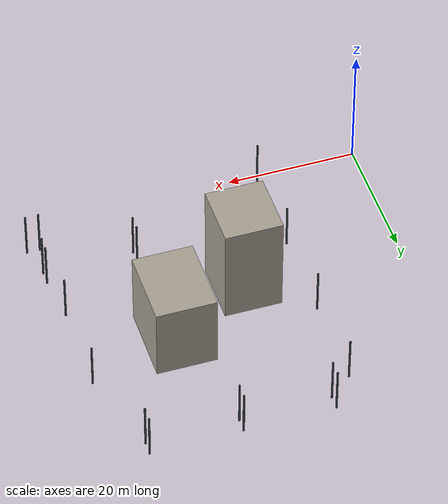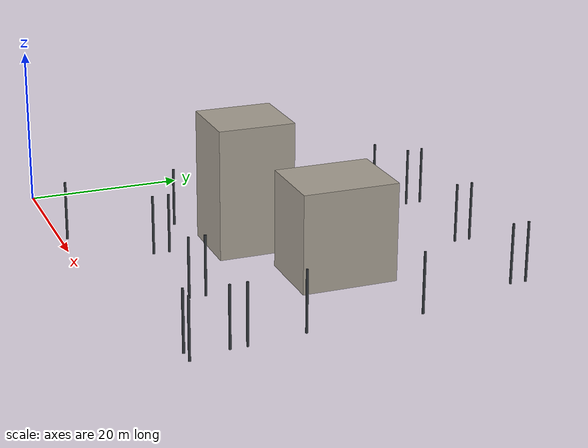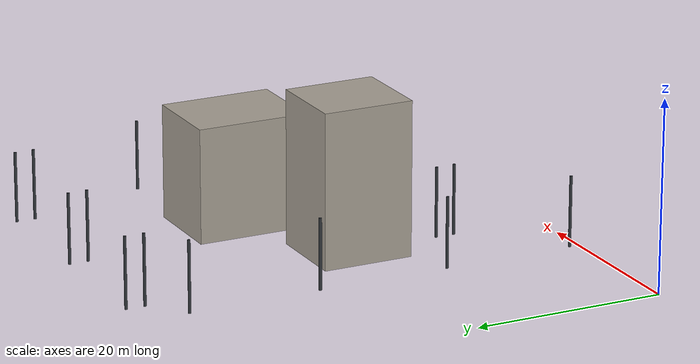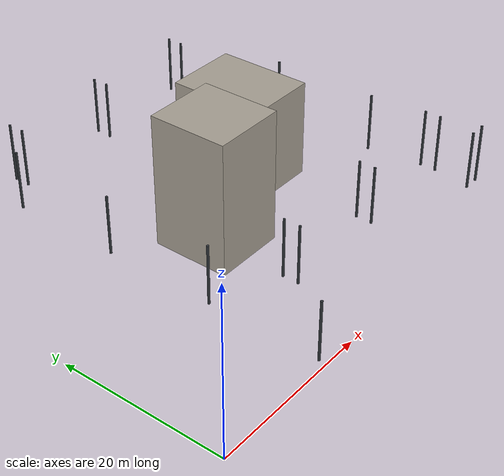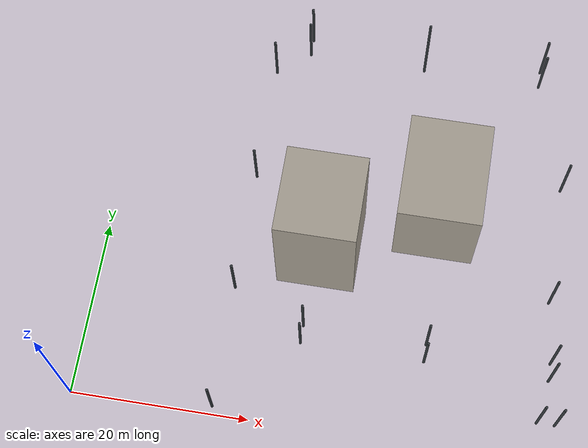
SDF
<sdf version="1.5">
 <world name="robocup_training_city_full_s7">
  <model name="building_2040">
   <static>true</static>
   <pose>24.751277 21.360362 0 0 0 0</pose>
   <link name="link">
    <pose>0 0 8.185209 0 0 0</pose>
    <collision name="collision">
     <geometry><box><size>8.853988 9.58888 16.370419</size></box></geometry>
     <surface><friction><ode><mu>1</mu><mu2>1</mu2></ode></friction></surface>
    </collision>
    <visual name="visual">
     <geometry><box><size>8.853988 9.58888 16.370419</size></box></geometry>
     <material>
      <ambient>0.297 0.2835 0.261 1</ambient>
      <diffuse>0.66 0.63 0.58 1</diffuse>
      <specular>0.04 0.04 0.04 1</specular>
      <emissive>0 0 0 1</emissive>
     </material>
    </visual>
    <inertial>
     <mass>1</mass>
     <inertia>
      <ixx>29.99477</ixx>
      <ixy>0</ixy>
      <ixz>0</ixz>
      <iyy>28.86531</iyy>
      <iyz>0</iyz>
      <izz>14.194977</izz>
     </inertia>
    </inertial>
   </link>
  </model>
  <model name="building_2043">
   <static>true</static>
   <pose>37.455269 28.03509 0 0 0 0</pose>
   <link name="link">
    <pose>0 0 6.081235 0 0 0</pose>
    <collision name="collision">
     <geometry><box><size>9.21264 11.802354 12.16247</size></box></geometry>
     <surface><friction><ode><mu>1</mu><mu2>1</mu2></ode></friction></surface>
    </collision>
    <visual name="visual">
     <geometry><box><size>9.21264 11.802354 12.16247</size></box></geometry>
     <material>
      <ambient>0.297 0.2835 0.261 1</ambient>
      <diffuse>0.66 0.63 0.58 1</diffuse>
      <specular>0.04 0.04 0.04 1</specular>
      <emissive>0 0 0 1</emissive>
     </material>
    </visual>
    <inertial>
     <mass>1</mass>
     <inertia>
      <ixx>23.935103</ixx>
      <ixy>0</ixy>
      <ixz>0</ixz>
      <iyy>19.399868</iyy>
      <iyz>0</iyz>
      <izz>18.680691</izz>
     </inertia>
    </inertial>
   </link>
  </model>
  <model name="lamp_post_2548">
   <static>true</static>
   <pose>15.8 0.937086 0 0 0 0</pose>
   <link name="link">
    <pose>0 0 3.75 0 0 0</pose>
    <collision name="collision">
     <geometry><cylinder><radius>0.15</radius><length>7.5</length></cylinder></geometry>
     <surface><friction><ode><mu>1</mu><mu2>1</mu2></ode></friction></surface>
    </collision>
    <visual name="visual">
     <geometry><cylinder><radius>0.15</radius><length>7.5</length></cylinder></geometry>
     <material>
      <ambient>0.09 0.099 0.108 1</ambient>
      <diffuse>0.2 0.22 0.24 1</diffuse>
      <specular>0.04 0.04 0.04 1</specular>
      <emissive>0 0 0 1</emissive>
     </material>
    </visual>
    <inertial>
     <mass>1</mass>
     <inertia>
      <ixx>4.693125</ixx>
      <ixy>0</ixy>
      <ixz>0</ixz>
      <iyy>4.693125</iyy>
      <iyz>0</iyz>
      <izz>0.01125</izz>
     </inertia>
    </inertial>
   </link>
  </model>
  <model name="lamp_post_2550">
   <static>true</static>
   <pose>15.8 14.937086 0 0 0 0</pose>
   <link name="link">
    <pose>0 0 3.75 0 0 0</pose>
    <collision name="collision">
     <geometry><cylinder><radius>0.15</radius><length>7.5</length></cylinder></geometry>
     <surface><friction><ode><mu>1</mu><mu2>1</mu2></ode></friction></surface>
    </collision>
    <visual name="visual">
     <geometry><cylinder><radius>0.15</radius><length>7.5</length></cylinder></geometry>
     <material>
      <ambient>0.09 0.099 0.108 1</ambient>
      <diffuse>0.2 0.22 0.24 1</diffuse>
      <specular>0.04 0.04 0.04 1</specular>
      <emissive>0 0 0 1</emissive>
     </material>
    </visual>
    <inertial>
     <mass>1</mass>
     <inertia>
      <ixx>4.693125</ixx>
      <ixy>0</ixy>
      <ixz>0</ixz>
      <iyy>4.693125</iyy>
      <iyz>0</iyz>
      <izz>0.01125</izz>
     </inertia>
    </inertial>
   </link>
  </model>
  <model name="lamp_post_2552">
   <static>true</static>
   <pose>15.8 28.937086 0 0 0 0</pose>
   <link name="link">
    <pose>0 0 3.75 0 0 0</pose>
    <collision name="collision">
     <geometry><cylinder><radius>0.15</radius><length>7.5</length></cylinder></geometry>
     <surface><friction><ode><mu>1</mu><mu2>1</mu2></ode></friction></surface>
    </collision>
    <visual name="visual">
     <geometry><cylinder><radius>0.15</radius><length>7.5</length></cylinder></geometry>
     <material>
      <ambient>0.09 0.099 0.108 1</ambient>
      <diffuse>0.2 0.22 0.24 1</diffuse>
      <specular>0.04 0.04 0.04 1</specular>
      <emissive>0 0 0 1</emissive>
     </material>
    </visual>
    <inertial>
     <mass>1</mass>
     <inertia>
      <ixx>4.693125</ixx>
      <ixy>0</ixy>
      <ixz>0</ixz>
      <iyy>4.693125</iyy>
      <iyz>0</iyz>
      <izz>0.01125</izz>
     </inertia>
    </inertial>
   </link>
  </model>
  <model name="lamp_post_2554">
   <static>true</static>
   <pose>15.8 42.937086 0 0 0 0</pose>
   <link name="link">
    <pose>0 0 3.75 0 0 0</pose>
    <collision name="collision">
     <geometry><cylinder><radius>0.15</radius><length>7.5</length></cylinder></geometry>
     <surface><friction><ode><mu>1</mu><mu2>1</mu2></ode></friction></surface>
    </collision>
    <visual name="visual">
     <geometry><cylinder><radius>0.15</radius><length>7.5</length></cylinder></geometry>
     <material>
      <ambient>0.09 0.099 0.108 1</ambient>
      <diffuse>0.2 0.22 0.24 1</diffuse>
      <specular>0.04 0.04 0.04 1</specular>
      <emissive>0 0 0 1</emissive>
     </material>
    </visual>
    <inertial>
     <mass>1</mass>
     <inertia>
      <ixx>4.693125</ixx>
      <ixy>0</ixy>
      <ixz>0</ixz>
      <iyy>4.693125</iyy>
      <iyz>0</iyz>
      <izz>0.01125</izz>
     </inertia>
    </inertial>
   </link>
  </model>
  <model name="lamp_post_2561">
   <static>true</static>
   <pose>51.4 4.777631 0 0 0 0</pose>
   <link name="link">
    <pose>0 0 3.75 0 0 0</pose>
    <collision name="collision">
     <geometry><cylinder><radius>0.15</radius><length>7.5</length></cylinder></geometry>
     <surface><friction><ode><mu>1</mu><mu2>1</mu2></ode></friction></surface>
    </collision>
    <visual name="visual">
     <geometry><cylinder><radius>0.15</radius><length>7.5</length></cylinder></geometry>
     <material>
      <ambient>0.09 0.099 0.108 1</ambient>
      <diffuse>0.2 0.22 0.24 1</diffuse>
      <specular>0.04 0.04 0.04 1</specular>
      <emissive>0 0 0 1</emissive>
     </material>
    </visual>
    <inertial>
     <mass>1</mass>
     <inertia>
      <ixx>4.693125</ixx>
      <ixy>0</ixy>
      <ixz>0</ixz>
      <iyy>4.693125</iyy>
      <iyz>0</iyz>
      <izz>0.01125</izz>
     </inertia>
    </inertial>
   </link>
  </model>
  <model name="lamp_post_2562">
   <static>true</static>
   <pose>53.4 4.777631 0 0 0 0</pose>
   <link name="link">
    <pose>0 0 3.75 0 0 0</pose>
    <collision name="collision">
     <geometry><cylinder><radius>0.15</radius><length>7.5</length></cylinder></geometry>
     <surface><friction><ode><mu>1</mu><mu2>1</mu2></ode></friction></surface>
    </collision>
    <visual name="visual">
     <geometry><cylinder><radius>0.15</radius><length>7.5</length></cylinder></geometry>
     <material>
      <ambient>0.09 0.099 0.108 1</ambient>
      <diffuse>0.2 0.22 0.24 1</diffuse>
      <specular>0.04 0.04 0.04 1</specular>
      <emissive>0 0 0 1</emissive>
     </material>
    </visual>
    <inertial>
     <mass>1</mass>
     <inertia>
      <ixx>4.693125</ixx>
      <ixy>0</ixy>
      <ixz>0</ixz>
      <iyy>4.693125</iyy>
      <iyz>0</iyz>
      <izz>0.01125</izz>
     </inertia>
    </inertial>
   </link>
  </model>
  <model name="lamp_post_2563">
   <static>true</static>
   <pose>51.4 18.777631 0 0 0 0</pose>
   <link name="link">
    <pose>0 0 3.75 0 0 0</pose>
    <collision name="collision">
     <geometry><cylinder><radius>0.15</radius><length>7.5</length></cylinder></geometry>
     <surface><friction><ode><mu>1</mu><mu2>1</mu2></ode></friction></surface>
    </collision>
    <visual name="visual">
     <geometry><cylinder><radius>0.15</radius><length>7.5</length></cylinder></geometry>
     <material>
      <ambient>0.09 0.099 0.108 1</ambient>
      <diffuse>0.2 0.22 0.24 1</diffuse>
      <specular>0.04 0.04 0.04 1</specular>
      <emissive>0 0 0 1</emissive>
     </material>
    </visual>
    <inertial>
     <mass>1</mass>
     <inertia>
      <ixx>4.693125</ixx>
      <ixy>0</ixy>
      <ixz>0</ixz>
      <iyy>4.693125</iyy>
      <iyz>0</iyz>
      <izz>0.01125</izz>
     </inertia>
    </inertial>
   </link>
  </model>
  <model name="lamp_post_2565">
   <static>true</static>
   <pose>51.4 32.777631 0 0 0 0</pose>
   <link name="link">
    <pose>0 0 3.75 0 0 0</pose>
    <collision name="collision">
     <geometry><cylinder><radius>0.15</radius><length>7.5</length></cylinder></geometry>
     <surface><friction><ode><mu>1</mu><mu2>1</mu2></ode></friction></surface>
    </collision>
    <visual name="visual">
     <geometry><cylinder><radius>0.15</radius><length>7.5</length></cylinder></geometry>
     <material>
      <ambient>0.09 0.099 0.108 1</ambient>
      <diffuse>0.2 0.22 0.24 1</diffuse>
      <specular>0.04 0.04 0.04 1</specular>
      <emissive>0 0 0 1</emissive>
     </material>
    </visual>
    <inertial>
     <mass>1</mass>
     <inertia>
      <ixx>4.693125</ixx>
      <ixy>0</ixy>
      <ixz>0</ixz>
      <iyy>4.693125</iyy>
      <iyz>0</iyz>
      <izz>0.01125</izz>
     </inertia>
    </inertial>
   </link>
  </model>
  <model name="lamp_post_2651">
   <static>true</static>
   <pose>24.249664 9.666667 0 0 0 0</pose>
   <link name="link">
    <pose>0 0 3.75 0 0 0</pose>
    <collision name="collision">
     <geometry><cylinder><radius>0.15</radius><length>7.5</length></cylinder></geometry>
     <surface><friction><ode><mu>1</mu><mu2>1</mu2></ode></friction></surface>
    </collision>
    <visual name="visual">
     <geometry><cylinder><radius>0.15</radius><length>7.5</length></cylinder></geometry>
     <material>
      <ambient>0.09 0.099 0.108 1</ambient>
      <diffuse>0.2 0.22 0.24 1</diffuse>
      <specular>0.04 0.04 0.04 1</specular>
      <emissive>0 0 0 1</emissive>
     </material>
    </visual>
    <inertial>
     <mass>1</mass>
     <inertia>
      <ixx>4.693125</ixx>
      <ixy>0</ixy>
      <ixz>0</ixz>
      <iyy>4.693125</iyy>
      <iyz>0</iyz>
      <izz>0.01125</izz>
     </inertia>
    </inertial>
   </link>
  </model>
  <model name="lamp_post_2652">
   <static>true</static>
   <pose>24.249664 11.666667 0 0 0 0</pose>
   <link name="link">
    <pose>0 0 3.75 0 0 0</pose>
    <collision name="collision">
     <geometry><cylinder><radius>0.15</radius><length>7.5</length></cylinder></geometry>
     <surface><friction><ode><mu>1</mu><mu2>1</mu2></ode></friction></surface>
    </collision>
    <visual name="visual">
     <geometry><cylinder><radius>0.15</radius><length>7.5</length></cylinder></geometry>
     <material>
      <ambient>0.09 0.099 0.108 1</ambient>
      <diffuse>0.2 0.22 0.24 1</diffuse>
      <specular>0.04 0.04 0.04 1</specular>
      <emissive>0 0 0 1</emissive>
     </material>
    </visual>
    <inertial>
     <mass>1</mass>
     <inertia>
      <ixx>4.693125</ixx>
      <ixy>0</ixy>
      <ixz>0</ixz>
      <iyy>4.693125</iyy>
      <iyz>0</iyz>
      <izz>0.01125</izz>
     </inertia>
    </inertial>
   </link>
  </model>
  <model name="lamp_post_2653">
   <static>true</static>
   <pose>38.249664 9.666667 0 0 0 0</pose>
   <link name="link">
    <pose>0 0 3.75 0 0 0</pose>
    <collision name="collision">
     <geometry><cylinder><radius>0.15</radius><length>7.5</length></cylinder></geometry>
     <surface><friction><ode><mu>1</mu><mu2>1</mu2></ode></friction></surface>
    </collision>
    <visual name="visual">
     <geometry><cylinder><radius>0.15</radius><length>7.5</length></cylinder></geometry>
     <material>
      <ambient>0.09 0.099 0.108 1</ambient>
      <diffuse>0.2 0.22 0.24 1</diffuse>
      <specular>0.04 0.04 0.04 1</specular>
      <emissive>0 0 0 1</emissive>
     </material>
    </visual>
    <inertial>
     <mass>1</mass>
     <inertia>
      <ixx>4.693125</ixx>
      <ixy>0</ixy>
      <ixz>0</ixz>
      <iyy>4.693125</iyy>
      <iyz>0</iyz>
      <izz>0.01125</izz>
     </inertia>
    </inertial>
   </link>
  </model>
  <model name="lamp_post_2654">
   <static>true</static>
   <pose>38.249664 11.666667 0 0 0 0</pose>
   <link name="link">
    <pose>0 0 3.75 0 0 0</pose>
    <collision name="collision">
     <geometry><cylinder><radius>0.15</radius><length>7.5</length></cylinder></geometry>
     <surface><friction><ode><mu>1</mu><mu2>1</mu2></ode></friction></surface>
    </collision>
    <visual name="visual">
     <geometry><cylinder><radius>0.15</radius><length>7.5</length></cylinder></geometry>
     <material>
      <ambient>0.09 0.099 0.108 1</ambient>
      <diffuse>0.2 0.22 0.24 1</diffuse>
      <specular>0.04 0.04 0.04 1</specular>
      <emissive>0 0 0 1</emissive>
     </material>
    </visual>
    <inertial>
     <mass>1</mass>
     <inertia>
      <ixx>4.693125</ixx>
      <ixy>0</ixy>
      <ixz>0</ixz>
      <iyy>4.693125</iyy>
      <iyz>0</iyz>
      <izz>0.01125</izz>
     </inertia>
    </inertial>
   </link>
  </model>
  <model name="lamp_post_2655">
   <static>true</static>
   <pose>52.249664 9.666667 0 0 0 0</pose>
   <link name="link">
    <pose>0 0 3.75 0 0 0</pose>
    <collision name="collision">
     <geometry><cylinder><radius>0.15</radius><length>7.5</length></cylinder></geometry>
     <surface><friction><ode><mu>1</mu><mu2>1</mu2></ode></friction></surface>
    </collision>
    <visual name="visual">
     <geometry><cylinder><radius>0.15</radius><length>7.5</length></cylinder></geometry>
     <material>
      <ambient>0.09 0.099 0.108 1</ambient>
      <diffuse>0.2 0.22 0.24 1</diffuse>
      <specular>0.04 0.04 0.04 1</specular>
      <emissive>0 0 0 1</emissive>
     </material>
    </visual>
    <inertial>
     <mass>1</mass>
     <inertia>
      <ixx>4.693125</ixx>
      <ixy>0</ixy>
      <ixz>0</ixz>
      <iyy>4.693125</iyy>
      <iyz>0</iyz>
      <izz>0.01125</izz>
     </inertia>
    </inertial>
   </link>
  </model>
  <model name="lamp_post_2656">
   <static>true</static>
   <pose>52.249664 11.666667 0 0 0 0</pose>
   <link name="link">
    <pose>0 0 3.75 0 0 0</pose>
    <collision name="collision">
     <geometry><cylinder><radius>0.15</radius><length>7.5</length></cylinder></geometry>
     <surface><friction><ode><mu>1</mu><mu2>1</mu2></ode></friction></surface>
    </collision>
    <visual name="visual">
     <geometry><cylinder><radius>0.15</radius><length>7.5</length></cylinder></geometry>
     <material>
      <ambient>0.09 0.099 0.108 1</ambient>
      <diffuse>0.2 0.22 0.24 1</diffuse>
      <specular>0.04 0.04 0.04 1</specular>
      <emissive>0 0 0 1</emissive>
     </material>
    </visual>
    <inertial>
     <mass>1</mass>
     <inertia>
      <ixx>4.693125</ixx>
      <ixy>0</ixy>
      <ixz>0</ixz>
      <iyy>4.693125</iyy>
      <iyz>0</iyz>
      <izz>0.01125</izz>
     </inertia>
    </inertial>
   </link>
  </model>
  <model name="lamp_post_2677">
   <static>true</static>
   <pose>19.488174 46 0 0 0 0</pose>
   <link name="link">
    <pose>0 0 3.75 0 0 0</pose>
    <collision name="collision">
     <geometry><cylinder><radius>0.15</radius><length>7.5</length></cylinder></geometry>
     <surface><friction><ode><mu>1</mu><mu2>1</mu2></ode></friction></surface>
    </collision>
    <visual name="visual">
     <geometry><cylinder><radius>0.15</radius><length>7.5</length></cylinder></geometry>
     <material>
      <ambient>0.09 0.099 0.108 1</ambient>
      <diffuse>0.2 0.22 0.24 1</diffuse>
      <specular>0.04 0.04 0.04 1</specular>
      <emissive>0 0 0 1</emissive>
     </material>
    </visual>
    <inertial>
     <mass>1</mass>
     <inertia>
      <ixx>4.693125</ixx>
      <ixy>0</ixy>
      <ixz>0</ixz>
      <iyy>4.693125</iyy>
      <iyz>0</iyz>
      <izz>0.01125</izz>
     </inertia>
    </inertial>
   </link>
  </model>
  <model name="lamp_post_2678">
   <static>true</static>
   <pose>19.488174 48 0 0 0 0</pose>
   <link name="link">
    <pose>0 0 3.75 0 0 0</pose>
    <collision name="collision">
     <geometry><cylinder><radius>0.15</radius><length>7.5</length></cylinder></geometry>
     <surface><friction><ode><mu>1</mu><mu2>1</mu2></ode></friction></surface>
    </collision>
    <visual name="visual">
     <geometry><cylinder><radius>0.15</radius><length>7.5</length></cylinder></geometry>
     <material>
      <ambient>0.09 0.099 0.108 1</ambient>
      <diffuse>0.2 0.22 0.24 1</diffuse>
      <specular>0.04 0.04 0.04 1</specular>
      <emissive>0 0 0 1</emissive>
     </material>
    </visual>
    <inertial>
     <mass>1</mass>
     <inertia>
      <ixx>4.693125</ixx>
      <ixy>0</ixy>
      <ixz>0</ixz>
      <iyy>4.693125</iyy>
      <iyz>0</iyz>
      <izz>0.01125</izz>
     </inertia>
    </inertial>
   </link>
  </model>
  <model name="lamp_post_2679">
   <static>true</static>
   <pose>33.488174 46 0 0 0 0</pose>
   <link name="link">
    <pose>0 0 3.75 0 0 0</pose>
    <collision name="collision">
     <geometry><cylinder><radius>0.15</radius><length>7.5</length></cylinder></geometry>
     <surface><friction><ode><mu>1</mu><mu2>1</mu2></ode></friction></surface>
    </collision>
    <visual name="visual">
     <geometry><cylinder><radius>0.15</radius><length>7.5</length></cylinder></geometry>
     <material>
      <ambient>0.09 0.099 0.108 1</ambient>
      <diffuse>0.2 0.22 0.24 1</diffuse>
      <specular>0.04 0.04 0.04 1</specular>
      <emissive>0 0 0 1</emissive>
     </material>
    </visual>
    <inertial>
     <mass>1</mass>
     <inertia>
      <ixx>4.693125</ixx>
      <ixy>0</ixy>
      <ixz>0</ixz>
      <iyy>4.693125</iyy>
      <iyz>0</iyz>
      <izz>0.01125</izz>
     </inertia>
    </inertial>
   </link>
  </model>
  <model name="lamp_post_2680">
   <static>true</static>
   <pose>33.488174 48 0 0 0 0</pose>
   <link name="link">
    <pose>0 0 3.75 0 0 0</pose>
    <collision name="collision">
     <geometry><cylinder><radius>0.15</radius><length>7.5</length></cylinder></geometry>
     <surface><friction><ode><mu>1</mu><mu2>1</mu2></ode></friction></surface>
    </collision>
    <visual name="visual">
     <geometry><cylinder><radius>0.15</radius><length>7.5</length></cylinder></geometry>
     <material>
      <ambient>0.09 0.099 0.108 1</ambient>
      <diffuse>0.2 0.22 0.24 1</diffuse>
      <specular>0.04 0.04 0.04 1</specular>
      <emissive>0 0 0 1</emissive>
     </material>
    </visual>
    <inertial>
     <mass>1</mass>
     <inertia>
      <ixx>4.693125</ixx>
      <ixy>0</ixy>
      <ixz>0</ixz>
      <iyy>4.693125</iyy>
      <iyz>0</iyz>
      <izz>0.01125</izz>
     </inertia>
    </inertial>
   </link>
  </model>
  <model name="lamp_post_2681">
   <static>true</static>
   <pose>47.488174 46 0 0 0 0</pose>
   <link name="link">
    <pose>0 0 3.75 0 0 0</pose>
    <collision name="collision">
     <geometry><cylinder><radius>0.15</radius><length>7.5</length></cylinder></geometry>
     <surface><friction><ode><mu>1</mu><mu2>1</mu2></ode></friction></surface>
    </collision>
    <visual name="visual">
     <geometry><cylinder><radius>0.15</radius><length>7.5</length></cylinder></geometry>
     <material>
      <ambient>0.09 0.099 0.108 1</ambient>
      <diffuse>0.2 0.22 0.24 1</diffuse>
      <specular>0.04 0.04 0.04 1</specular>
      <emissive>0 0 0 1</emissive>
     </material>
    </visual>
    <inertial>
     <mass>1</mass>
     <inertia>
      <ixx>4.693125</ixx>
      <ixy>0</ixy>
      <ixz>0</ixz>
      <iyy>4.693125</iyy>
      <iyz>0</iyz>
      <izz>0.01125</izz>
     </inertia>
    </inertial>
   </link>
  </model>
  <model name="lamp_post_2682">
   <static>true</static>
   <pose>47.488174 48 0 0 0 0</pose>
   <link name="link">
    <pose>0 0 3.75 0 0 0</pose>
    <collision name="collision">
     <geometry><cylinder><radius>0.15</radius><length>7.5</length></cylinder></geometry>
     <surface><friction><ode><mu>1</mu><mu2>1</mu2></ode></friction></surface>
    </collision>
    <visual name="visual">
     <geometry><cylinder><radius>0.15</radius><length>7.5</length></cylinder></geometry>
     <material>
      <ambient>0.09 0.099 0.108 1</ambient>
      <diffuse>0.2 0.22 0.24 1</diffuse>
      <specular>0.04 0.04 0.04 1</specular>
      <emissive>0 0 0 1</emissive>
     </material>
    </visual>
    <inertial>
     <mass>1</mass>
     <inertia>
      <ixx>4.693125</ixx>
      <ixy>0</ixy>
      <ixz>0</ixz>
      <iyy>4.693125</iyy>
      <iyz>0</iyz>
      <izz>0.01125</izz>
     </inertia>
    </inertial>
   </link>
  </model>
 </world>
</sdf>
